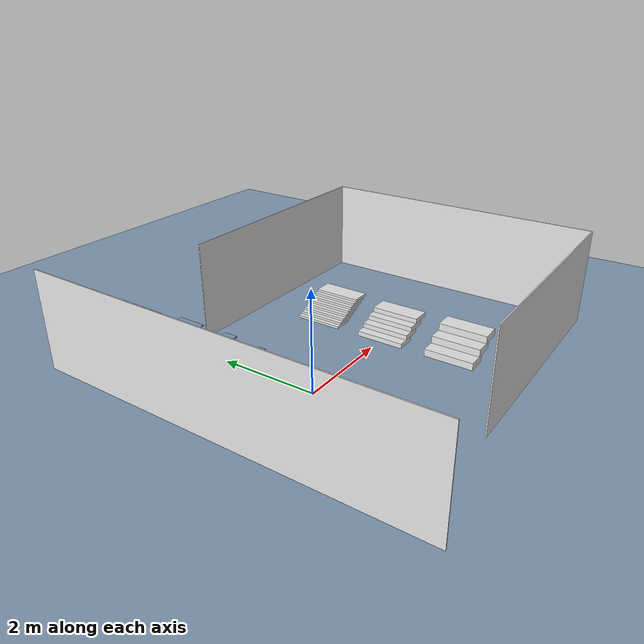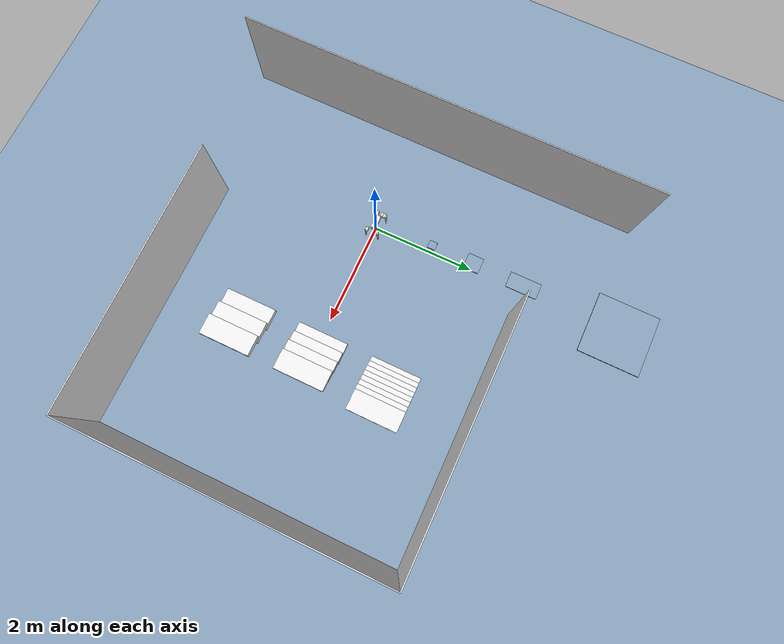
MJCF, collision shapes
<mujoco model="go1_scene">
  <!-- 1) 로봇 본체 불러오기 -->
  <include file="go1.xml"/>

  <statistic center="1.0 0.7 1.0" extent="0.8"/>

  <visual>
    <headlight diffuse="0.6 0.6 0.6" ambient="0.1 0.1 0.1" specular="0.9 0.9 0.9"/>
    <rgba haze="0.15 0.25 0.35 1"/>
    <global azimuth="-140" elevation="-20"/>
  </visual>

  <asset>
    <texture type="skybox" builtin="flat" rgb1="0 0 0" rgb2="0 0 0" width="512" height="3072"/>
    <texture type="2d" name="groundplane" builtin="checker" mark="edge" rgb1="0.2 0.3 0.4" rgb2="0.1 0.2 0.3" markrgb="0.8 0.8 0.8" width="300" height="300"/>
    <material name="groundplane" texture="groundplane" texuniform="true" texrepeat="5 5" reflectance="0.2"/>
    <texture name="woodbase" type="2d" builtin="flat" rgb1="0.55 0.27 0.07" rgb2="0.50 0.23 0.06" width="512" height="512"/>
    <material name="WoodGradient" texture="woodbase" texuniform="true" reflectance="0.05" specular="0.15" shininess="10"/>

    <texture name="grayflat" type="2d" builtin="flat" rgb1="0.6 0.6 0.6" rgb2="0.4 0.4 0.4" width="512" height="3072"/>
    <material name="FloorGray" texture="grayflat" texuniform="true" reflectance="0.03" specular="0.1" shininess="5"/>
  </asset>

  <default>
      <default class="obstacle">
          <geom type="box" friction="0.8 0.8 0.8" priority="2"/>
      </default>
      <default class="slippery">
          <geom type="box" priority="2"/>
      </default>
  </default>

  <worldbody>
    <light pos="1 0 3.5" dir="0 0 -1" directional="true"/>
    <geom name="floor" size="0 0 0.05" type="plane" material="FloorGray"/>

    <geom name="Wall_0" class="obstacle" pos="3  3   1"   size="2.5 0.01 1" rgba="0.9 0.9 0.9 1"/>
    <geom name="Wall_1" class="obstacle" pos="5.5  0 1"   size="0.01 3.0 1" rgba="0.9 0.9 0.9 0.2"/>
    <geom name="Wall_2" class="obstacle" pos="3 -3   1"   size="2.5 0.01 1" rgba="0.9 0.9 0.9 1"/>
    <geom name="Wall_3" class="obstacle" pos="-2 0.5 1"   size="0.01 4 1"   rgba="0.9 0.9 0.9 1"/>

    <!-- 1단계 계단 x방향, 높이 5cm, 좌우폭 50cm, 전후 거리 10cm, 6단  -->
    <geom name="Stair_1_0" class="obstacle" pos="2.5 1.5 0.025" size="0.2 0.5 0.025" rgba="0.9 0.9 0.9 1"/>
    <geom name="Stair_1_1" class="obstacle" pos="2.6 1.5 0.075" size="0.2 0.5 0.025" rgba="0.9 0.9 0.9 1"/>
    <geom name="Stair_1_2" class="obstacle" pos="2.7 1.5 0.125" size="0.2 0.5 0.025" rgba="0.9 0.9 0.9 1"/>
    <geom name="Stair_1_3" class="obstacle" pos="2.8 1.5 0.175" size="0.2 0.5 0.025" rgba="0.9 0.9 0.9 1"/>
    <geom name="Stair_1_4" class="obstacle" pos="2.9 1.5 0.225" size="0.2 0.5 0.025" rgba="0.9 0.9 0.9 1"/>
    <geom name="Stair_1_5" class="obstacle" pos="3.0 1.5 0.275" size="0.2 0.5 0.025" rgba="0.9 0.9 0.9 1"/>
    <geom name="Stair_1_6" class="obstacle" pos="3.1 1.5 0.325" size="0.2 0.5 0.025" rgba="0.9 0.9 0.9 1"/>
    <geom name="Stair_1_7" class="obstacle" pos="3.2 1.5 0.375" size="0.2 0.5 0.025" rgba="0.9 0.9 0.9 1"/>

    <!-- 2단계 계단 x방향, 높이 10cm, 좌우폭 50cm, 전후 거리 20cm, 4단 -->
    <geom name="Stair_2_0" class="obstacle" pos="2.5 -0. 0.05" size="0.2 0.5 0.05" rgba="0.9 0.9 0.9 1"/>
    <geom name="Stair_2_1" class="obstacle" pos="2.7 -0. 0.15" size="0.2 0.5 0.05" rgba="0.9 0.9 0.9 1"/>
    <geom name="Stair_2_2" class="obstacle" pos="2.9 -0. 0.25" size="0.2 0.5 0.05" rgba="0.9 0.9 0.9 1"/>
    <geom name="Stair_2_3" class="obstacle" pos="3.1 -0. 0.35" size="0.2 0.5 0.05" rgba="0.9 0.9 0.9 1"/>

    <!-- 3단계 계단 x방향, 높이 15cm, 좌우폭 50cm, 전후 거리 30cm, 4단 -->
    <geom name="Stair_3_0" class="obstacle" pos="2.5 -1.5 0.075" size="0.2 0.5 0.075" rgba="0.9 0.9 0.9 1"/>
    <geom name="Stair_3_1" class="obstacle" pos="2.8 -1.5 0.225"  size="0.2 0.5 0.075" rgba="0.9 0.9 0.9 1"/>
    <geom name="Stair_3_2" class="obstacle" pos="3.1 -1.5 0.375"  size="0.2 0.5 0.075" rgba="0.9 0.9 0.9 1"/>

    <!-- 나무 블럭 장애물 1 => 17개 -->
    <body pos="0.007 1.170 0.5">
      <joint type="free"/>
      <geom type="box" size="0.075 0.075 0.015"  material="WoodGradient" mass="0.5"/>
    </body>
    <!-- 나무 블럭 장애물 2 => 8개 -->
    <body pos="0.007 2.0 0.5">
      <joint type="free"/>
      <geom type="box" size="0.15 0.15 0.015"  material="WoodGradient" mass="1.0"/>
    </body>

    <!-- 나무 블럭 장애물 3 => 8개 -->
    <body pos="0.007 3.0 0.5">
      <joint type="free"/>
      <geom type="box" size="0.15 0.3 0.01"  material="WoodGradient" mass="1.5"/>
    </body>

    <body name="support" pos="0 5 0">
      <!-- 원통 중심을 z=0.1에 두면 높이 0.2로 위쪽 0.1 아래쪽 0.1 -->
      <geom name="support_cylinder" type="cylinder" size="0.025 0.1" pos="0 0 0.05" quat="0.7071 0.7071 0 0"  rgba="0.6 0.6 0.6 1"/>

      <!-- 시소 축: 원통 바로 위, 같은 축선상 -->
      <body name="seesaw_root" pos="0 0 0.1">
        <joint name="pivot" type="hinge" axis="0 1 0" damping="1"/>

        <!-- 정사각판자: 0.6x0.6, 두께 0.02 -->
        <body name="plank" pos="0 0 0">
          <geom name="plank_geom" type="box" size="0.6 0.6 0.015" material="WoodGradient" mass="5"/>
        </body>
      </body>
    </body>

  </worldbody>
</mujoco>

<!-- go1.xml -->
<mujoco model="go1_description">
    <compiler angle="radian" meshdir="../meshes/" />
    <size njmax="500" nconmax="100" />
    <option gravity='0 0 -9.806' iterations='50' solver='Newton' timestep='0.002'/>

    <default>
        <geom contype="1" conaffinity="1" friction="1.0 0.8 0.8" rgba="0.5 0.6 0.7 1" margin="0.001" group="0"/>

        <light castshadow="false" diffuse="1 1 1"/>
        <motor ctrlrange="-33.5 33.5" ctrllimited="true"/>
        <camera fovy="60"/>
        <joint damping="0.01" armature="0.01" frictionloss="0.2" />

    </default>

    <asset>
        <mesh name="trunk" file="trunk.stl" />
        <mesh name="hip" file="hip.stl" />
        <mesh name="thigh_mirror" file="thigh_mirror.stl" />
        <mesh name="calf" file="calf.stl" />
        <mesh name="thigh" file="thigh.stl" />
    </asset>

    <asset>
        <texture type="skybox" builtin="gradient" rgb1="1.0 1.0 1.0" rgb2="1.0 1.0 1.0" width="512" height="512"/>
        <texture name="plane" type="2d" builtin="flat" rgb1="1 1 1" rgb2="1 1 1" width="512" height="512" mark="cross" markrgb="0 0 0"/>
        <material name="plane" reflectance="0.0" texture="plane" texrepeat="3 3" texuniform="true"/>
    </asset>

    <visual>
        <rgba com="0.502 1.0 0 0.5" contactforce="0.98 0.4 0.4 0.7" contactpoint="1.0 1.0 0.6 0.4"/>
        <scale com="0.2" forcewidth="0.035" contactwidth="0.10" contactheight="0.04"/>
    </visual>

    <worldbody>
        <light directional="true" diffuse=".8 .8 .8" pos="0 0 10" dir="0 0 -10"/>
        <camera name="track" mode="trackcom" pos="0 -1.3 1.6" xyaxes="1 0 0 0 0.707 0.707"/>

        <body name="trunk" pos="0 0 0.35">
            <inertial pos="0.0116053 0.00442221 0.000106692" quat="0.0111438 0.707126 -0.00935374 0.706938" mass="4.801" diaginertia="0.0447997 0.0366257 0.0162187" />
            <joint type="free" />
            <geom type="mesh" contype="0" conaffinity="0" group="1" rgba="0.913725 0.913725 0.847059 1" mesh="trunk" />
            <geom size="0.13 0.04675 0.057" type="box" rgba="0.913725 0.913725 0.847059 1" />
            <geom size="0.0005 0.0005 0.0005" pos="-0.01592 -0.06659 -0.00617" type="box" contype="0" conaffinity="0" group="1" rgba="0.8 0 0 0" />
            <geom size="0.0005 0.0005 0.0005" pos="-0.01592 -0.06659 -0.00617" type="box" rgba="0.8 0 0 0" />
            <site name="imu" pos="0 0 0"/>

            <body name="FR_hip" pos="0.1881 -0.04675 0">
                <inertial pos="-0.00406411 -0.0193463 4.50733e-06" quat="0.467526 0.531662 -0.466259 0.530431" mass="0.679292" diaginertia="0.00131334 0.00122648 0.000728484" />
                <joint name="FR_hip_joint" pos="0 0 0" axis="1 0 0" limited="true" range="-0.802851 0.802851" />
                <geom quat="0 1 0 0" type="mesh" contype="0" conaffinity="0" group="1" rgba="0.913725 0.913725 0.847059 1" mesh="hip" />
                <geom size="0.046 0.02" pos="0 -0.045 0" quat="0.707107 0.707107 0 0" type="cylinder" rgba="0.913725 0.913725 0.847059 0" />
                <geom size="0.031 0.02" pos="0 -0.07 0" quat="0.707107 0.707107 0 0" type="cylinder" rgba="0.913725 0.913725 0.847059 0" />

                <body name="FR_thigh" pos="0 -0.08 0">
                    <inertial pos="-0.003468 0.018947 -0.032736" quat="0.999266 0.00067676 -0.0382978 0.000639813" mass="0.898919" diaginertia="0.00542178 0.00514246 0.000998869" />
                    <joint name="FR_thigh_joint" pos="0 0 0" axis="0 1 0" limited="true" range="-1.0472 4.18879" />
                    <geom type="mesh" contype="0" conaffinity="0" group="1" rgba="0.913725 0.913725 0.847059 1" mesh="thigh_mirror" />
                    <geom size="0.1065 0.01225 0.017" pos="0 0 -0.1065" quat="0.707107 0 0.707107 0" type="box" rgba="0.913725 0.913725 0.847059 0" />
                    <body name="FR_calf" pos="0 0 -0.213">
                        <inertial pos="0.00455603 0.0009473 -0.147239" quat="0.762045 0.00970173 0.0180098 0.647201" mass="0.218015" diaginertia="0.00399678 0.00398122 3.99428e-05" />
                        <joint name="FR_calf_joint" pos="0 0 0" axis="0 1 0" limited="true" range="-2.69653 -0.916298" />
                        <geom type="mesh" contype="0" conaffinity="0" group="1" rgba="0 0 0 1" mesh="calf" />
                        <geom size="0.1065 0.008 0.008" pos="0 0 -0.1065" quat="0.707107 0 0.707107 0" type="box" rgba="0 0 0 0" />
                        <geom size="0.01" pos="0 0 -0.213" contype="0" conaffinity="0" group="1" rgba="0 0 0 1" />
                        <geom size="0.02" pos="0 0 -0.213" rgba="0 0 0 1" />
                    </body>
                </body>
            </body>
            <body name="FL_hip" pos="0.1881 0.04675 0">
                <inertial pos="-0.00406411 0.0193463 4.50733e-06" quat="0.531662 0.467526 -0.530431 0.466259" mass="0.679292" diaginertia="0.00131334 0.00122648 0.000728484" />
                <joint name="FL_hip_joint" pos="0 0 0" axis="1 0 0" limited="true" range="-0.802851 0.802851" />
                <geom type="mesh" contype="0" conaffinity="0" group="1" rgba="0.913725 0.913725 0.847059 1" mesh="hip" />
                <geom size="0.046 0.02" pos="0 0.045 0" quat="0.707107 0.707107 0 0" type="cylinder" rgba="0.913725 0.913725 0.847059 0" />
                <geom size="0.031 0.02" pos="0 0.07 0" quat="0.707107 0.707107 0 0" type="cylinder" rgba="0.913725 0.913725 0.847059 0" />

                <body name="FL_thigh" pos="0 0.08 0">
                    <inertial pos="-0.003468 -0.018947 -0.032736" quat="0.999266 -0.00067676 -0.0382978 -0.000639813" mass="0.898919" diaginertia="0.00542178 0.00514246 0.000998869" />
                    <joint name="FL_thigh_joint" pos="0 0 0" axis="0 1 0" limited="true" range="-1.0472 4.18879" />
                    <geom type="mesh" contype="0" conaffinity="0" group="1" rgba="0.913725 0.913725 0.847059 1" mesh="thigh" />
                    <geom size="0.1065 0.01225 0.017" pos="0 0 -0.1065" quat="0.707107 0 0.707107 0" type="box" rgba="0.913725 0.913725 0.847059 0" />
                    <body name="FL_calf" pos="0 0 -0.213">
                        <inertial pos="0.00455603 0.0009473 -0.147239" quat="0.762045 0.00970173 0.0180098 0.647201" mass="0.218015" diaginertia="0.00399678 0.00398122 3.99428e-05" />
                        <joint name="FL_calf_joint" pos="0 0 0" axis="0 1 0" limited="true" range="-2.69653 -0.916298" />
                        <geom type="mesh" contype="0" conaffinity="0" group="1" rgba="0 0 0 1" mesh="calf" />
                        <geom size="0.1065 0.008 0.008" pos="0 0 -0.1065" quat="0.707107 0 0.707107 0" type="box" rgba="0.913725 0.913725 0.847059 0" />
                        <geom size="0.01" pos="0 0 -0.213" contype="0" conaffinity="0" group="1" rgba="0 0 0 1" />
                        <geom size="0.02" pos="0 0 -0.213" rgba="0 0 0 1" />
                    </body>
                </body>
            </body>
            <body name="RR_hip" pos="-0.1881 -0.04675 0">
                <inertial pos="0.00406411 -0.0193463 4.50733e-06" quat="0.530431 0.466259 -0.531662 0.467526" mass="0.679292" diaginertia="0.00131334 0.00122648 0.000728484" />
                <joint name="RR_hip_joint" pos="0 0 0" axis="1 0 0" limited="true" range="-0.802851 0.802851" />
                <geom quat="0 0 0 -1" type="mesh" contype="0" conaffinity="0" group="1" rgba="0.913725 0.913725 0.847059 1" mesh="hip" />
                <geom size="0.046 0.02" quat="0.707107 0.707107 0 0" type="cylinder" rgba="0.913725 0.913725 0.847059 1" />
                <geom size="0.046 0.02" pos="0 -0.045 0" quat="0.707107 0.707107 0 0" type="cylinder" rgba="0.913725 0.913725 0.847059 0" />
                <geom size="0.031 0.02" pos="0 -0.07 0" quat="0.707107 0.707107 0 0" type="cylinder" rgba="0.913725 0.913725 0.847059 0" />

                <body name="RR_thigh" pos="0 -0.08 0">
                    <inertial pos="-0.003468 0.018947 -0.032736" quat="0.999266 0.00067676 -0.0382978 0.000639813" mass="0.898919" diaginertia="0.00542178 0.00514246 0.000998869" />
                    <joint name="RR_thigh_joint" pos="0 0 0" axis="0 1 0" limited="true" range="-1.0472 4.18879" />
                    <geom type="mesh" contype="0" conaffinity="0" group="1" rgba="0.913725 0.913725 0.847059 1" mesh="thigh_mirror" />
                    <geom size="0.1065 0.01225 0.017" pos="0 0 -0.1065" quat="0.707107 0 0.707107 0" type="box" rgba="0.913725 0.913725 0.847059 0" />
                    <body name="RR_calf" pos="0 0 -0.213">
                        <inertial pos="0.00455603 0.0009473 -0.147239" quat="0.762045 0.00970173 0.0180098 0.647201" mass="0.218015" diaginertia="0.00399678 0.00398122 3.99428e-05" />
                        <joint name="RR_calf_joint" pos="0 0 0" axis="0 1 0" limited="true" range="-2.69653 -0.916298" />
                        <geom type="mesh" contype="0" conaffinity="0" group="1" rgba="0 0 0 1" mesh="calf" />
                        <geom size="0.1065 0.008 0.008" pos="0 0 -0.1065" quat="0.707107 0 0.707107 0" type="box" rgba="0 0 0 0" />
                        <geom size="0.01" pos="0 0 -0.213" contype="0" conaffinity="0" group="1" rgba="0 0 0 1" />
                        <geom size="0.02" pos="0 0 -0.213" rgba="0 0 0 1" />
                    </body>
                </body>
            </body>
            <body name="RL_hip" pos="-0.1881 0.04675 0">
                <inertial pos="0.00406411 0.0193463 4.50733e-06" quat="0.466259 0.530431 -0.467526 0.531662" mass="0.679292" diaginertia="0.00131334 0.00122648 0.000728484" />
                <joint name="RL_hip_joint" pos="0 0 0" axis="1 0 0" limited="true" range="-0.802851 0.802851"  />
                <geom quat="0 0 1 0" type="mesh" contype="0" conaffinity="0" group="1" rgba="0.913725 0.913725 0.847059 1" mesh="hip" />
                <geom size="0.046 0.02" quat="0.707107 0.707107 0 0" type="cylinder" rgba="0.913725 0.913725 0.847059 1" />
                <geom size="0.046 0.02" pos="0 0.045 0" quat="0.707107 0.707107 0 0" type="cylinder" rgba="0.913725 0.913725 0.847059 0" />
                <geom size="0.031 0.02" pos="0 0.07 0" quat="0.707107 0.707107 0 0" type="cylinder" rgba="0.913725 0.913725 0.847059 0" />

                <body name="RL_thigh" pos="0 0.08 0">
                    <inertial pos="-0.003468 -0.018947 -0.032736" quat="0.999266 -0.00067676 -0.0382978 -0.000639813" mass="0.898919" diaginertia="0.00542178 0.00514246 0.000998869" />
                    <joint name="RL_thigh_joint" pos="0 0 0" axis="0 1 0" limited="true" range="-1.0472 4.18879" />
                    <geom type="mesh" contype="0" conaffinity="0" group="1" rgba="0.913725 0.913725 0.847059 1" mesh="thigh" />
                    <geom size="0.1065 0.01225 0.017" pos="0 0 -0.1065" quat="0.707107 0 0.707107 0" type="box" rgba="0.913725 0.913725 0.847059 0" />
                    <body name="RL_calf" pos="0 0 -0.213">
                        <inertial pos="0.00455603 0.0009473 -0.147239" quat="0.762045 0.00970173 0.0180098 0.647201" mass="0.218015" diaginertia="0.00399678 0.00398122 3.99428e-05" />
                        <joint name="RL_calf_joint" pos="0 0 0" axis="0 1 0" limited="true" range="-2.69653 -0.916298" />
                        <geom type="mesh" contype="0" conaffinity="0" group="1" rgba="0 0 0 1" mesh="calf" />
                        <geom size="0.1065 0.008 0.008" pos="0 0 -0.1065" quat="0.707107 0 0.707107 0" type="box" rgba="0 0 0 0" />
                        <geom size="0.01" pos="0 0 -0.213" contype="0" conaffinity="0" group="1" rgba="0 0 0 1" />
                        <geom size="0.02" pos="0 0 -0.213" rgba="0 0 0 1" />
                    </body>
                </body>
            </body>
        </body>
    </worldbody>
    <actuator>

        <motor name="FR_hip"       gear="1" joint="FR_hip_joint"/>
        <motor name="FR_thigh"     gear="1" joint="FR_thigh_joint"/>
        <motor name="FR_calf"      gear="1" joint="FR_calf_joint"/>
        <motor name="FL_hip"       gear="1" joint="FL_hip_joint"/>
        <motor name="FL_thigh"     gear="1" joint="FL_thigh_joint"/>
        <motor name="FL_calf"      gear="1" joint="FL_calf_joint"/>
        <motor name="RR_hip"       gear="1" joint="RR_hip_joint"/>
        <motor name="RR_thigh"     gear="1" joint="RR_thigh_joint"/>
        <motor name="RR_calf"      gear="1" joint="RR_calf_joint" />
        <motor name="RL_hip"       gear="1" joint="RL_hip_joint"/>
        <motor name="RL_thigh"     gear="1" joint="RL_thigh_joint"/>
        <motor name="RL_calf"      gear="1" joint="RL_calf_joint"/>
    </actuator>

    <sensor>

        <jointpos name="FR_hip_pos"     joint="FR_hip_joint"/>
        <jointpos name="FR_thigh_pos"   joint="FR_thigh_joint"/>
        <jointpos name="FR_calf_pos"    joint="FR_calf_joint"/>
        <jointpos name="FL_hip_pos"     joint="FL_hip_joint"/>
        <jointpos name="FL_thigh_pos"   joint="FL_thigh_joint"/>
        <jointpos name="FL_calf_pos"    joint="FL_calf_joint"/>
        <jointpos name="RR_hip_pos"     joint="RR_hip_joint"/>
        <jointpos name="RR_thigh_pos"   joint="RR_thigh_joint"/>
        <jointpos name="RR_calf_pos"    joint="RR_calf_joint" />
        <jointpos name="RL_hip_pos"     joint="RL_hip_joint"/>
        <jointpos name="RL_thigh_pos"   joint="RL_thigh_joint"/>
        <jointpos name="RL_calf_pos"    joint="RL_calf_joint"/>

        <jointvel name="FR_hip_vel"     joint="FR_hip_joint"/>
        <jointvel name="FR_thigh_vel"   joint="FR_thigh_joint"/>
        <jointvel name="FR_calf_vel"    joint="FR_calf_joint"/>
        <jointvel name="FL_hip_vel"     joint="FL_hip_joint"/>
        <jointvel name="FL_thigh_vel"   joint="FL_thigh_joint"/>
        <jointvel name="FL_calf_vel"    joint="FL_calf_joint"/>
        <jointvel name="RR_hip_vel"     joint="RR_hip_joint"/>
        <jointvel name="RR_thigh_vel"   joint="RR_thigh_joint"/>
        <jointvel name="RR_calf_vel"    joint="RR_calf_joint" />
        <jointvel name="RL_hip_vel"     joint="RL_hip_joint"/>
        <jointvel name="RL_thigh_vel"   joint="RL_thigh_joint"/>
        <jointvel name="RL_calf_vel"    joint="RL_calf_joint"/>

        <accelerometer name="Body_Acc" site="imu"/>

        <gyro name="Body_Gyro" site="imu"/>

        <framepos name="Body_Pos" objtype="site" objname="imu"/>

        <framequat name="Body_Quat" objtype="site" objname="imu"/>

    </sensor>
    <!-- base_link(body) ↔ world(body) -->
</mujoco>
